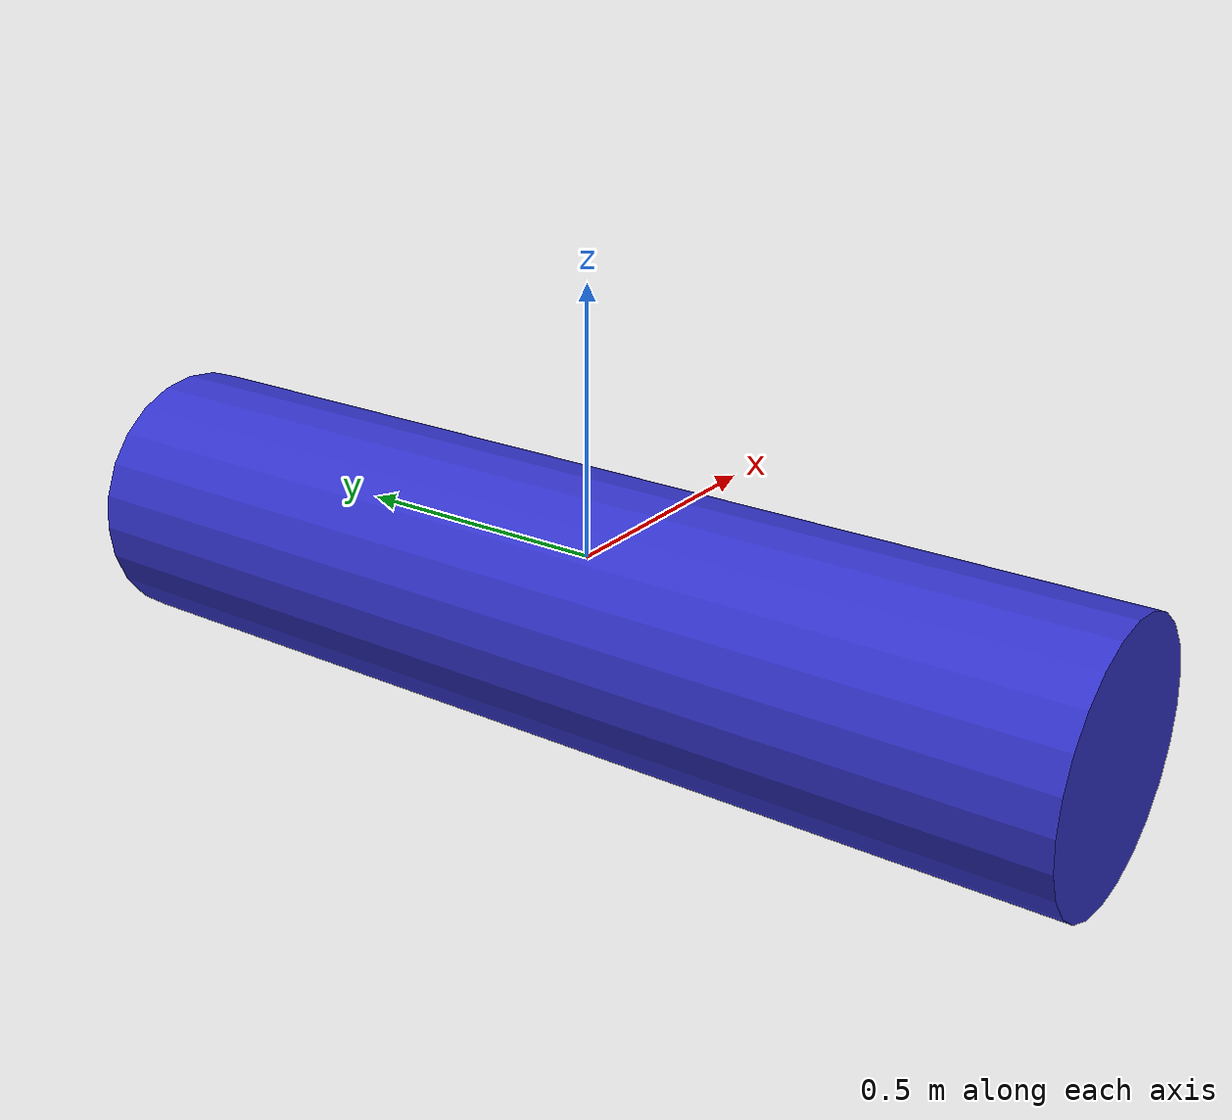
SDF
<?xml version="1.0" ?>
<sdf version="1.6">
  <model name="floating_cylinder">
    <static>false</static>
    <link name="cylinder">
      <!-- Place the cylinder just below the water surface, horizontal (roll=1.57) -->
      <pose>0 0 -0.1 1.57 0 0</pose>
      <inertial>
        <mass>5</mass>
        <inertia>
          <ixx>3.33</ixx>  <!-- For rotation around length axis -->
          <iyy>0.33</iyy>  <!-- For vertical rotation -->
          <izz>0.625</izz>
        </inertia>
      </inertial>
      <collision name="collision">
        <geometry>
          <cylinder>
            <radius>0.25</radius>
            <length>2.0</length>
          </cylinder>
        </geometry>
      </collision>
      <visual name="visual">
        <geometry>
          <cylinder>
            <radius>0.25</radius>
            <length>2.0</length>
          </cylinder>
        </geometry>
        <material>
          <ambient>0.2 0.2 0.8 1</ambient>
        </material>
      </visual>
      <velocity_decay>
        <linear>0.6</linear>
        <angular>0.6</angular>
      </velocity_decay>
    </link>

    <!-- Custom buoyancy plugin for the cylinder -->
    <plugin name="custom_buoyancy" filename="librobot_buoyancy_wave.so">
      <fluid_density>997.0</fluid_density>
      <surface_z>0.0</surface_z>
              <volume>0.80</volume> <!-- pi*0.25^2*2.0, slightly increased for floating -->

      <link name="cylinder">
        <center_of_buoyancy>0 0 0</center_of_buoyancy>
        <cyl_height>2.0</cyl_height>
        <damping>500.0</damping>
      </link>
    </plugin>
  </model>
</sdf>
